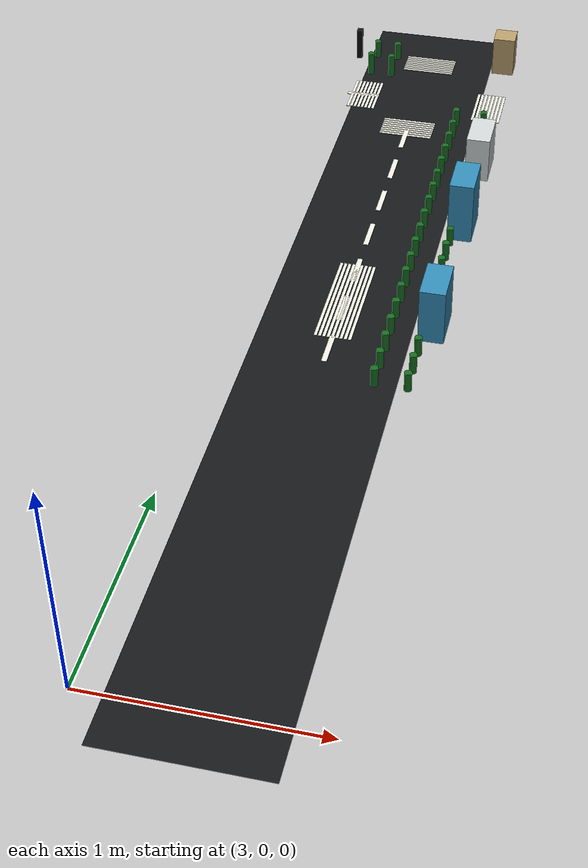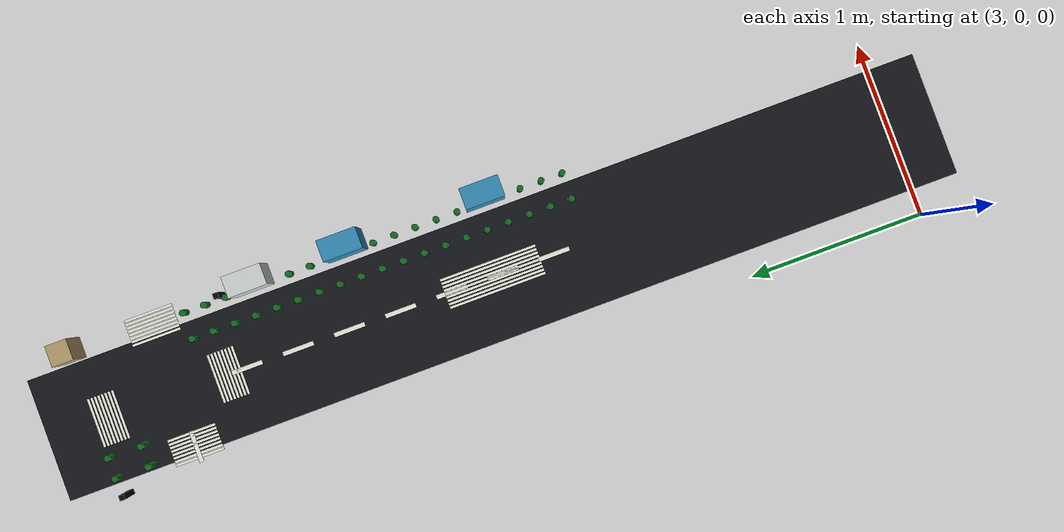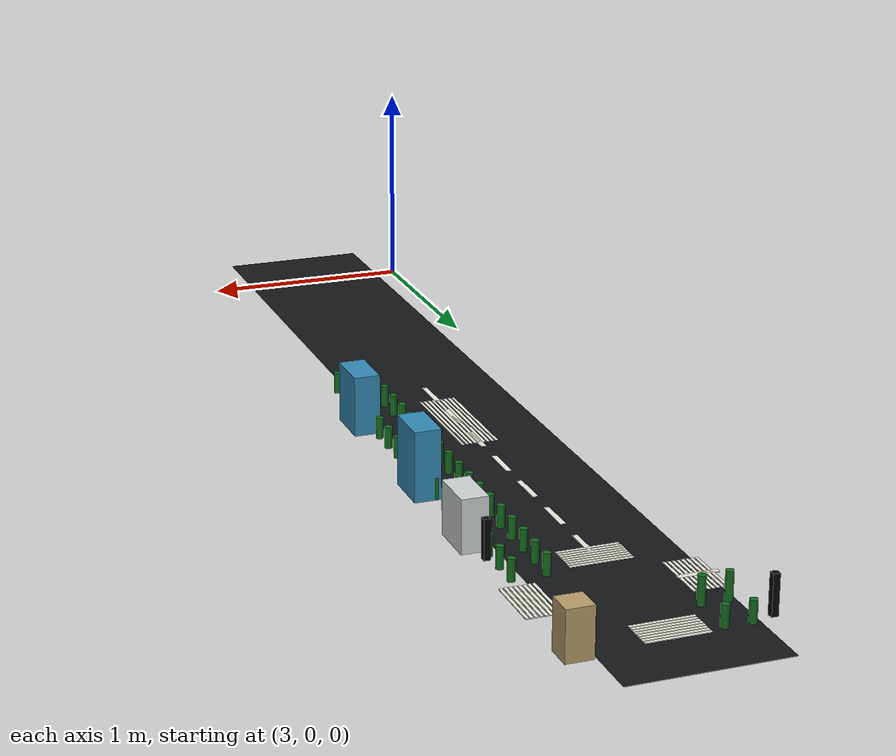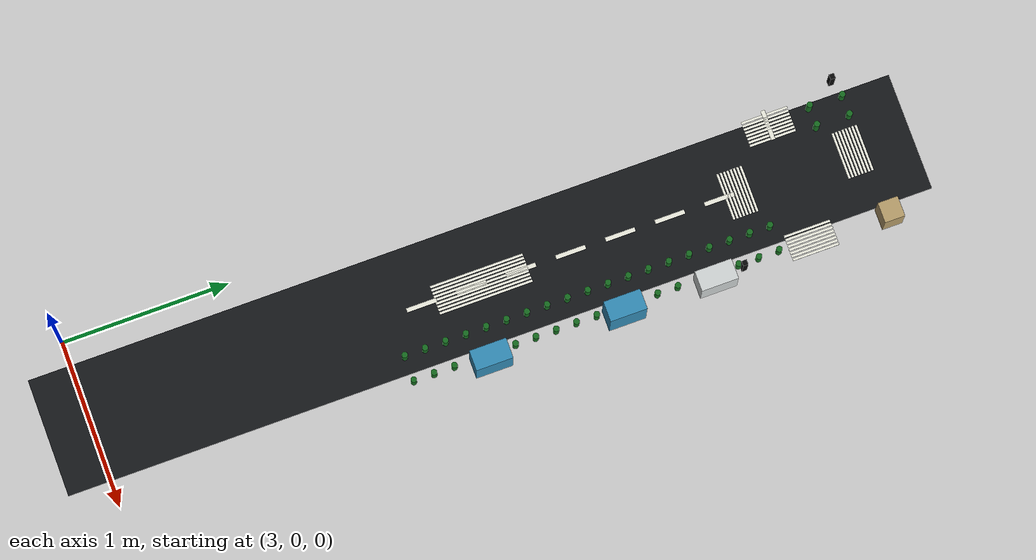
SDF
<sdf version="1.7">
 <world name="sandbox">
  <model name="RD-RING-E">
   <static>true</static>
   <pose>3.5 2.35 0.051000000000000004 0 0 0</pose>
   <link name="link">
    <collision name="collision">
     <geometry><box><size>0.7000000000000001 5.2 0.002</size></box></geometry>
    </collision>
    <visual name="visual">
     <geometry><box><size>0.7000000000000001 5.2 0.002</size></box></geometry>
     <material><ambient>0.08 0.09 0.1 1</ambient><diffuse>0.08 0.09 0.1 1</diffuse></material>
    </visual>
   </link>
  </model>
  <model name="LM-RING-E-05">
   <static>true</static>
   <pose>3.5 1.9900000000000002 0.05450000000000001 0 0 0</pose>
   <link name="link">
    <collision name="collision"><geometry><box><size>0.025 0.18 0.004</size></box></geometry></collision>
    <visual name="visual">
     <geometry><box><size>0.025 0.18 0.004</size></box></geometry>
     <material><ambient>0.93 0.93 0.88 1</ambient><diffuse>0.93 0.93 0.88 1</diffuse></material>
    </visual>
   </link>
  </model>
  <model name="LM-RING-E-06">
   <static>true</static>
   <pose>3.5 2.29 0.05450000000000001 0 0 0</pose>
   <link name="link">
    <collision name="collision"><geometry><box><size>0.025 0.18 0.004</size></box></geometry></collision>
    <visual name="visual">
     <geometry><box><size>0.025 0.18 0.004</size></box></geometry>
     <material><ambient>0.93 0.93 0.88 1</ambient><diffuse>0.93 0.93 0.88 1</diffuse></material>
    </visual>
   </link>
  </model>
  <model name="LM-RING-E-07">
   <static>true</static>
   <pose>3.5 2.59 0.05450000000000001 0 0 0</pose>
   <link name="link">
    <collision name="collision"><geometry><box><size>0.025 0.18 0.004</size></box></geometry></collision>
    <visual name="visual">
     <geometry><box><size>0.025 0.18 0.004</size></box></geometry>
     <material><ambient>0.93 0.93 0.88 1</ambient><diffuse>0.93 0.93 0.88 1</diffuse></material>
    </visual>
   </link>
  </model>
  <model name="LM-RING-E-08">
   <static>true</static>
   <pose>3.5 2.89 0.05450000000000001 0 0 0</pose>
   <link name="link">
    <collision name="collision"><geometry><box><size>0.025 0.18 0.004</size></box></geometry></collision>
    <visual name="visual">
     <geometry><box><size>0.025 0.18 0.004</size></box></geometry>
     <material><ambient>0.93 0.93 0.88 1</ambient><diffuse>0.93 0.93 0.88 1</diffuse></material>
    </visual>
   </link>
  </model>
  <model name="LM-RING-E-09">
   <static>true</static>
   <pose>3.5 3.19 0.05450000000000001 0 0 0</pose>
   <link name="link">
    <collision name="collision"><geometry><box><size>0.025 0.18 0.004</size></box></geometry></collision>
    <visual name="visual">
     <geometry><box><size>0.025 0.18 0.004</size></box></geometry>
     <material><ambient>0.93 0.93 0.88 1</ambient><diffuse>0.93 0.93 0.88 1</diffuse></material>
    </visual>
   </link>
  </model>
  <model name="LM-RING-E-10">
   <static>true</static>
   <pose>3.5 3.4899999999999998 0.05450000000000001 0 0 0</pose>
   <link name="link">
    <collision name="collision"><geometry><box><size>0.025 0.18 0.004</size></box></geometry></collision>
    <visual name="visual">
     <geometry><box><size>0.025 0.18 0.004</size></box></geometry>
     <material><ambient>0.93 0.93 0.88 1</ambient><diffuse>0.93 0.93 0.88 1</diffuse></material>
    </visual>
   </link>
  </model>
  <model name="LM-RING-E-11">
   <static>true</static>
   <pose>3.5 3.79 0.05450000000000001 0 0 0</pose>
   <link name="link">
    <collision name="collision"><geometry><box><size>0.025 0.18 0.004</size></box></geometry></collision>
    <visual name="visual">
     <geometry><box><size>0.025 0.18 0.004</size></box></geometry>
     <material><ambient>0.93 0.93 0.88 1</ambient><diffuse>0.93 0.93 0.88 1</diffuse></material>
    </visual>
   </link>
  </model>
  <model name="LM-RING-N-09">
   <static>true</static>
   <pose>3.19 4.2 0.05450000000000001 0 0 0</pose>
   <link name="link">
    <collision name="collision"><geometry><box><size>0.18 0.025 0.004</size></box></geometry></collision>
    <visual name="visual">
     <geometry><box><size>0.18 0.025 0.004</size></box></geometry>
     <material><ambient>0.93 0.93 0.88 1</ambient><diffuse>0.93 0.93 0.88 1</diffuse></material>
    </visual>
   </link>
  </model>
  <model name="CW-NE-X-01">
   <static>true</static>
   <pose>3.5 3.83 0.05450000000000001 0 0 0</pose>
   <link name="link">
    <collision name="collision"><geometry><box><size>0.28 0.014 0.004</size></box></geometry></collision>
    <visual name="visual">
     <geometry><box><size>0.28 0.014 0.004</size></box></geometry>
     <material><ambient>0.93 0.93 0.88 1</ambient><diffuse>0.93 0.93 0.88 1</diffuse></material>
    </visual>
   </link>
  </model>
  <model name="CW-NE-X-02">
   <static>true</static>
   <pose>3.5 3.85 0.05450000000000001 0 0 0</pose>
   <link name="link">
    <collision name="collision"><geometry><box><size>0.28 0.014 0.004</size></box></geometry></collision>
    <visual name="visual">
     <geometry><box><size>0.28 0.014 0.004</size></box></geometry>
     <material><ambient>0.93 0.93 0.88 1</ambient><diffuse>0.93 0.93 0.88 1</diffuse></material>
    </visual>
   </link>
  </model>
  <model name="CW-NE-X-03">
   <static>true</static>
   <pose>3.5 3.87 0.05450000000000001 0 0 0</pose>
   <link name="link">
    <collision name="collision"><geometry><box><size>0.28 0.014 0.004</size></box></geometry></collision>
    <visual name="visual">
     <geometry><box><size>0.28 0.014 0.004</size></box></geometry>
     <material><ambient>0.93 0.93 0.88 1</ambient><diffuse>0.93 0.93 0.88 1</diffuse></material>
    </visual>
   </link>
  </model>
  <model name="CW-NE-X-04">
   <static>true</static>
   <pose>3.5 3.89 0.05450000000000001 0 0 0</pose>
   <link name="link">
    <collision name="collision"><geometry><box><size>0.28 0.014 0.004</size></box></geometry></collision>
    <visual name="visual">
     <geometry><box><size>0.28 0.014 0.004</size></box></geometry>
     <material><ambient>0.93 0.93 0.88 1</ambient><diffuse>0.93 0.93 0.88 1</diffuse></material>
    </visual>
   </link>
  </model>
  <model name="CW-NE-X-05">
   <static>true</static>
   <pose>3.5 3.9099999999999997 0.05450000000000001 0 0 0</pose>
   <link name="link">
    <collision name="collision"><geometry><box><size>0.28 0.014 0.004</size></box></geometry></collision>
    <visual name="visual">
     <geometry><box><size>0.28 0.014 0.004</size></box></geometry>
     <material><ambient>0.93 0.93 0.88 1</ambient><diffuse>0.93 0.93 0.88 1</diffuse></material>
    </visual>
   </link>
  </model>
  <model name="CW-NE-X-06">
   <static>true</static>
   <pose>3.5 3.9299999999999997 0.05450000000000001 0 0 0</pose>
   <link name="link">
    <collision name="collision"><geometry><box><size>0.28 0.014 0.004</size></box></geometry></collision>
    <visual name="visual">
     <geometry><box><size>0.28 0.014 0.004</size></box></geometry>
     <material><ambient>0.93 0.93 0.88 1</ambient><diffuse>0.93 0.93 0.88 1</diffuse></material>
    </visual>
   </link>
  </model>
  <model name="CW-NE-X-07">
   <static>true</static>
   <pose>3.5 3.9499999999999997 0.05450000000000001 0 0 0</pose>
   <link name="link">
    <collision name="collision"><geometry><box><size>0.28 0.014 0.004</size></box></geometry></collision>
    <visual name="visual">
     <geometry><box><size>0.28 0.014 0.004</size></box></geometry>
     <material><ambient>0.93 0.93 0.88 1</ambient><diffuse>0.93 0.93 0.88 1</diffuse></material>
    </visual>
   </link>
  </model>
  <model name="CW-NE-X-08">
   <static>true</static>
   <pose>3.5 3.9699999999999998 0.05450000000000001 0 0 0</pose>
   <link name="link">
    <collision name="collision"><geometry><box><size>0.28 0.014 0.004</size></box></geometry></collision>
    <visual name="visual">
     <geometry><box><size>0.28 0.014 0.004</size></box></geometry>
     <material><ambient>0.93 0.93 0.88 1</ambient><diffuse>0.93 0.93 0.88 1</diffuse></material>
    </visual>
   </link>
  </model>
  <model name="CW-NE-Y-01">
   <static>true</static>
   <pose>3.1300000000000003 4.2 0.05450000000000001 0 0 0</pose>
   <link name="link">
    <collision name="collision"><geometry><box><size>0.014 0.28 0.004</size></box></geometry></collision>
    <visual name="visual">
     <geometry><box><size>0.014 0.28 0.004</size></box></geometry>
     <material><ambient>0.93 0.93 0.88 1</ambient><diffuse>0.93 0.93 0.88 1</diffuse></material>
    </visual>
   </link>
  </model>
  <model name="CW-NE-Y-02">
   <static>true</static>
   <pose>3.1500000000000004 4.2 0.05450000000000001 0 0 0</pose>
   <link name="link">
    <collision name="collision"><geometry><box><size>0.014 0.28 0.004</size></box></geometry></collision>
    <visual name="visual">
     <geometry><box><size>0.014 0.28 0.004</size></box></geometry>
     <material><ambient>0.93 0.93 0.88 1</ambient><diffuse>0.93 0.93 0.88 1</diffuse></material>
    </visual>
   </link>
  </model>
  <model name="CW-NE-Y-03">
   <static>true</static>
   <pose>3.1700000000000004 4.2 0.05450000000000001 0 0 0</pose>
   <link name="link">
    <collision name="collision"><geometry><box><size>0.014 0.28 0.004</size></box></geometry></collision>
    <visual name="visual">
     <geometry><box><size>0.014 0.28 0.004</size></box></geometry>
     <material><ambient>0.93 0.93 0.88 1</ambient><diffuse>0.93 0.93 0.88 1</diffuse></material>
    </visual>
   </link>
  </model>
  <model name="CW-NE-Y-04">
   <static>true</static>
   <pose>3.1900000000000004 4.2 0.05450000000000001 0 0 0</pose>
   <link name="link">
    <collision name="collision"><geometry><box><size>0.014 0.28 0.004</size></box></geometry></collision>
    <visual name="visual">
     <geometry><box><size>0.014 0.28 0.004</size></box></geometry>
     <material><ambient>0.93 0.93 0.88 1</ambient><diffuse>0.93 0.93 0.88 1</diffuse></material>
    </visual>
   </link>
  </model>
  <model name="CW-NE-Y-05">
   <static>true</static>
   <pose>3.21 4.2 0.05450000000000001 0 0 0</pose>
   <link name="link">
    <collision name="collision"><geometry><box><size>0.014 0.28 0.004</size></box></geometry></collision>
    <visual name="visual">
     <geometry><box><size>0.014 0.28 0.004</size></box></geometry>
     <material><ambient>0.93 0.93 0.88 1</ambient><diffuse>0.93 0.93 0.88 1</diffuse></material>
    </visual>
   </link>
  </model>
  <model name="CW-NE-Y-06">
   <static>true</static>
   <pose>3.23 4.2 0.05450000000000001 0 0 0</pose>
   <link name="link">
    <collision name="collision"><geometry><box><size>0.014 0.28 0.004</size></box></geometry></collision>
    <visual name="visual">
     <geometry><box><size>0.014 0.28 0.004</size></box></geometry>
     <material><ambient>0.93 0.93 0.88 1</ambient><diffuse>0.93 0.93 0.88 1</diffuse></material>
    </visual>
   </link>
  </model>
  <model name="CW-NE-Y-07">
   <static>true</static>
   <pose>3.25 4.2 0.05450000000000001 0 0 0</pose>
   <link name="link">
    <collision name="collision"><geometry><box><size>0.014 0.28 0.004</size></box></geometry></collision>
    <visual name="visual">
     <geometry><box><size>0.014 0.28 0.004</size></box></geometry>
     <material><ambient>0.93 0.93 0.88 1</ambient><diffuse>0.93 0.93 0.88 1</diffuse></material>
    </visual>
   </link>
  </model>
  <model name="CW-NE-Y-08">
   <static>true</static>
   <pose>3.27 4.2 0.05450000000000001 0 0 0</pose>
   <link name="link">
    <collision name="collision"><geometry><box><size>0.014 0.28 0.004</size></box></geometry></collision>
    <visual name="visual">
     <geometry><box><size>0.014 0.28 0.004</size></box></geometry>
     <material><ambient>0.93 0.93 0.88 1</ambient><diffuse>0.93 0.93 0.88 1</diffuse></material>
    </visual>
   </link>
  </model>
  <model name="CW-C-E-01">
   <static>true</static>
   <pose>3.42 2.35 0.05450000000000001 0 0 0</pose>
   <link name="link">
    <collision name="collision"><geometry><box><size>0.014 0.56 0.004</size></box></geometry></collision>
    <visual name="visual">
     <geometry><box><size>0.014 0.56 0.004</size></box></geometry>
     <material><ambient>0.93 0.93 0.88 1</ambient><diffuse>0.93 0.93 0.88 1</diffuse></material>
    </visual>
   </link>
  </model>
  <model name="CW-C-E-02">
   <static>true</static>
   <pose>3.44 2.35 0.05450000000000001 0 0 0</pose>
   <link name="link">
    <collision name="collision"><geometry><box><size>0.014 0.56 0.004</size></box></geometry></collision>
    <visual name="visual">
     <geometry><box><size>0.014 0.56 0.004</size></box></geometry>
     <material><ambient>0.93 0.93 0.88 1</ambient><diffuse>0.93 0.93 0.88 1</diffuse></material>
    </visual>
   </link>
  </model>
  <model name="CW-C-E-03">
   <static>true</static>
   <pose>3.46 2.35 0.05450000000000001 0 0 0</pose>
   <link name="link">
    <collision name="collision"><geometry><box><size>0.014 0.56 0.004</size></box></geometry></collision>
    <visual name="visual">
     <geometry><box><size>0.014 0.56 0.004</size></box></geometry>
     <material><ambient>0.93 0.93 0.88 1</ambient><diffuse>0.93 0.93 0.88 1</diffuse></material>
    </visual>
   </link>
  </model>
  <model name="CW-C-E-04">
   <static>true</static>
   <pose>3.48 2.35 0.05450000000000001 0 0 0</pose>
   <link name="link">
    <collision name="collision"><geometry><box><size>0.014 0.56 0.004</size></box></geometry></collision>
    <visual name="visual">
     <geometry><box><size>0.014 0.56 0.004</size></box></geometry>
     <material><ambient>0.93 0.93 0.88 1</ambient><diffuse>0.93 0.93 0.88 1</diffuse></material>
    </visual>
   </link>
  </model>
  <model name="CW-C-E-05">
   <static>true</static>
   <pose>3.5 2.35 0.05450000000000001 0 0 0</pose>
   <link name="link">
    <collision name="collision"><geometry><box><size>0.014 0.56 0.004</size></box></geometry></collision>
    <visual name="visual">
     <geometry><box><size>0.014 0.56 0.004</size></box></geometry>
     <material><ambient>0.93 0.93 0.88 1</ambient><diffuse>0.93 0.93 0.88 1</diffuse></material>
    </visual>
   </link>
  </model>
  <model name="CW-C-E-06">
   <static>true</static>
   <pose>3.52 2.35 0.05450000000000001 0 0 0</pose>
   <link name="link">
    <collision name="collision"><geometry><box><size>0.014 0.56 0.004</size></box></geometry></collision>
    <visual name="visual">
     <geometry><box><size>0.014 0.56 0.004</size></box></geometry>
     <material><ambient>0.93 0.93 0.88 1</ambient><diffuse>0.93 0.93 0.88 1</diffuse></material>
    </visual>
   </link>
  </model>
  <model name="CW-C-E-07">
   <static>true</static>
   <pose>3.54 2.35 0.05450000000000001 0 0 0</pose>
   <link name="link">
    <collision name="collision"><geometry><box><size>0.014 0.56 0.004</size></box></geometry></collision>
    <visual name="visual">
     <geometry><box><size>0.014 0.56 0.004</size></box></geometry>
     <material><ambient>0.93 0.93 0.88 1</ambient><diffuse>0.93 0.93 0.88 1</diffuse></material>
    </visual>
   </link>
  </model>
  <model name="CW-C-E-08">
   <static>true</static>
   <pose>3.56 2.35 0.05450000000000001 0 0 0</pose>
   <link name="link">
    <collision name="collision"><geometry><box><size>0.014 0.56 0.004</size></box></geometry></collision>
    <visual name="visual">
     <geometry><box><size>0.014 0.56 0.004</size></box></geometry>
     <material><ambient>0.93 0.93 0.88 1</ambient><diffuse>0.93 0.93 0.88 1</diffuse></material>
    </visual>
   </link>
  </model>
  <model name="CW-C-E-09">
   <static>true</static>
   <pose>3.58 2.35 0.05450000000000001 0 0 0</pose>
   <link name="link">
    <collision name="collision"><geometry><box><size>0.014 0.56 0.004</size></box></geometry></collision>
    <visual name="visual">
     <geometry><box><size>0.014 0.56 0.004</size></box></geometry>
     <material><ambient>0.93 0.93 0.88 1</ambient><diffuse>0.93 0.93 0.88 1</diffuse></material>
    </visual>
   </link>
  </model>
  <model name="CW-EXT-E-N-01">
   <static>true</static>
   <pose>3.5 4.53 0.05450000000000001 0 0 0</pose>
   <link name="link">
    <collision name="collision"><geometry><box><size>0.28 0.014 0.004</size></box></geometry></collision>
    <visual name="visual">
     <geometry><box><size>0.28 0.014 0.004</size></box></geometry>
     <material><ambient>0.93 0.93 0.88 1</ambient><diffuse>0.93 0.93 0.88 1</diffuse></material>
    </visual>
   </link>
  </model>
  <model name="CW-EXT-E-N-02">
   <static>true</static>
   <pose>3.5 4.550000000000001 0.05450000000000001 0 0 0</pose>
   <link name="link">
    <collision name="collision"><geometry><box><size>0.28 0.014 0.004</size></box></geometry></collision>
    <visual name="visual">
     <geometry><box><size>0.28 0.014 0.004</size></box></geometry>
     <material><ambient>0.93 0.93 0.88 1</ambient><diffuse>0.93 0.93 0.88 1</diffuse></material>
    </visual>
   </link>
  </model>
  <model name="CW-EXT-E-N-03">
   <static>true</static>
   <pose>3.5 4.57 0.05450000000000001 0 0 0</pose>
   <link name="link">
    <collision name="collision"><geometry><box><size>0.28 0.014 0.004</size></box></geometry></collision>
    <visual name="visual">
     <geometry><box><size>0.28 0.014 0.004</size></box></geometry>
     <material><ambient>0.93 0.93 0.88 1</ambient><diffuse>0.93 0.93 0.88 1</diffuse></material>
    </visual>
   </link>
  </model>
  <model name="CW-EXT-E-N-04">
   <static>true</static>
   <pose>3.5 4.590000000000001 0.05450000000000001 0 0 0</pose>
   <link name="link">
    <collision name="collision"><geometry><box><size>0.28 0.014 0.004</size></box></geometry></collision>
    <visual name="visual">
     <geometry><box><size>0.28 0.014 0.004</size></box></geometry>
     <material><ambient>0.93 0.93 0.88 1</ambient><diffuse>0.93 0.93 0.88 1</diffuse></material>
    </visual>
   </link>
  </model>
  <model name="CW-EXT-E-N-05">
   <static>true</static>
   <pose>3.5 4.61 0.05450000000000001 0 0 0</pose>
   <link name="link">
    <collision name="collision"><geometry><box><size>0.28 0.014 0.004</size></box></geometry></collision>
    <visual name="visual">
     <geometry><box><size>0.28 0.014 0.004</size></box></geometry>
     <material><ambient>0.93 0.93 0.88 1</ambient><diffuse>0.93 0.93 0.88 1</diffuse></material>
    </visual>
   </link>
  </model>
  <model name="CW-EXT-E-N-06">
   <static>true</static>
   <pose>3.5 4.630000000000001 0.05450000000000001 0 0 0</pose>
   <link name="link">
    <collision name="collision"><geometry><box><size>0.28 0.014 0.004</size></box></geometry></collision>
    <visual name="visual">
     <geometry><box><size>0.28 0.014 0.004</size></box></geometry>
     <material><ambient>0.93 0.93 0.88 1</ambient><diffuse>0.93 0.93 0.88 1</diffuse></material>
    </visual>
   </link>
  </model>
  <model name="CW-EXT-E-N-07">
   <static>true</static>
   <pose>3.5 4.65 0.05450000000000001 0 0 0</pose>
   <link name="link">
    <collision name="collision"><geometry><box><size>0.28 0.014 0.004</size></box></geometry></collision>
    <visual name="visual">
     <geometry><box><size>0.28 0.014 0.004</size></box></geometry>
     <material><ambient>0.93 0.93 0.88 1</ambient><diffuse>0.93 0.93 0.88 1</diffuse></material>
    </visual>
   </link>
  </model>
  <model name="CW-EXT-E-N-08">
   <static>true</static>
   <pose>3.5 4.670000000000001 0.05450000000000001 0 0 0</pose>
   <link name="link">
    <collision name="collision"><geometry><box><size>0.28 0.014 0.004</size></box></geometry></collision>
    <visual name="visual">
     <geometry><box><size>0.28 0.014 0.004</size></box></geometry>
     <material><ambient>0.93 0.93 0.88 1</ambient><diffuse>0.93 0.93 0.88 1</diffuse></material>
    </visual>
   </link>
  </model>
  <model name="CW-EXT-N-E-01">
   <static>true</static>
   <pose>3.83 4.2 0.05450000000000001 0 0 0</pose>
   <link name="link">
    <collision name="collision"><geometry><box><size>0.014 0.28 0.004</size></box></geometry></collision>
    <visual name="visual">
     <geometry><box><size>0.014 0.28 0.004</size></box></geometry>
     <material><ambient>0.93 0.93 0.88 1</ambient><diffuse>0.93 0.93 0.88 1</diffuse></material>
    </visual>
   </link>
  </model>
  <model name="CW-EXT-N-E-02">
   <static>true</static>
   <pose>3.85 4.2 0.05450000000000001 0 0 0</pose>
   <link name="link">
    <collision name="collision"><geometry><box><size>0.014 0.28 0.004</size></box></geometry></collision>
    <visual name="visual">
     <geometry><box><size>0.014 0.28 0.004</size></box></geometry>
     <material><ambient>0.93 0.93 0.88 1</ambient><diffuse>0.93 0.93 0.88 1</diffuse></material>
    </visual>
   </link>
  </model>
  <model name="CW-EXT-N-E-03">
   <static>true</static>
   <pose>3.87 4.2 0.05450000000000001 0 0 0</pose>
   <link name="link">
    <collision name="collision"><geometry><box><size>0.014 0.28 0.004</size></box></geometry></collision>
    <visual name="visual">
     <geometry><box><size>0.014 0.28 0.004</size></box></geometry>
     <material><ambient>0.93 0.93 0.88 1</ambient><diffuse>0.93 0.93 0.88 1</diffuse></material>
    </visual>
   </link>
  </model>
  <model name="CW-EXT-N-E-04">
   <static>true</static>
   <pose>3.89 4.2 0.05450000000000001 0 0 0</pose>
   <link name="link">
    <collision name="collision"><geometry><box><size>0.014 0.28 0.004</size></box></geometry></collision>
    <visual name="visual">
     <geometry><box><size>0.014 0.28 0.004</size></box></geometry>
     <material><ambient>0.93 0.93 0.88 1</ambient><diffuse>0.93 0.93 0.88 1</diffuse></material>
    </visual>
   </link>
  </model>
  <model name="CW-EXT-N-E-05">
   <static>true</static>
   <pose>3.9099999999999997 4.2 0.05450000000000001 0 0 0</pose>
   <link name="link">
    <collision name="collision"><geometry><box><size>0.014 0.28 0.004</size></box></geometry></collision>
    <visual name="visual">
     <geometry><box><size>0.014 0.28 0.004</size></box></geometry>
     <material><ambient>0.93 0.93 0.88 1</ambient><diffuse>0.93 0.93 0.88 1</diffuse></material>
    </visual>
   </link>
  </model>
  <model name="CW-EXT-N-E-06">
   <static>true</static>
   <pose>3.9299999999999997 4.2 0.05450000000000001 0 0 0</pose>
   <link name="link">
    <collision name="collision"><geometry><box><size>0.014 0.28 0.004</size></box></geometry></collision>
    <visual name="visual">
     <geometry><box><size>0.014 0.28 0.004</size></box></geometry>
     <material><ambient>0.93 0.93 0.88 1</ambient><diffuse>0.93 0.93 0.88 1</diffuse></material>
    </visual>
   </link>
  </model>
  <model name="CW-EXT-N-E-07">
   <static>true</static>
   <pose>3.9499999999999997 4.2 0.05450000000000001 0 0 0</pose>
   <link name="link">
    <collision name="collision"><geometry><box><size>0.014 0.28 0.004</size></box></geometry></collision>
    <visual name="visual">
     <geometry><box><size>0.014 0.28 0.004</size></box></geometry>
     <material><ambient>0.93 0.93 0.88 1</ambient><diffuse>0.93 0.93 0.88 1</diffuse></material>
    </visual>
   </link>
  </model>
  <model name="CW-EXT-N-E-08">
   <static>true</static>
   <pose>3.9699999999999998 4.2 0.05450000000000001 0 0 0</pose>
   <link name="link">
    <collision name="collision"><geometry><box><size>0.014 0.28 0.004</size></box></geometry></collision>
    <visual name="visual">
     <geometry><box><size>0.014 0.28 0.004</size></box></geometry>
     <material><ambient>0.93 0.93 0.88 1</ambient><diffuse>0.93 0.93 0.88 1</diffuse></material>
    </visual>
   </link>
  </model>
  <model name="BLD-F04">
   <static>true</static>
   <pose>3.92 4.66 0.16 0 0 0</pose>
   <link name="link">
    <collision name="collision"><geometry><box><size>0.12 0.12 0.22</size></box></geometry></collision>
    <visual name="visual">
     <geometry><box><size>0.12 0.12 0.22</size></box></geometry>
     <material><ambient>0.72 0.62 0.42 1</ambient><diffuse>0.72 0.62 0.42 1</diffuse></material>
    </visual>
   </link>
  </model>
  <model name="BLD-R02">
   <static>true</static>
   <pose>3.94 2.25 0.19 0 0 0</pose>
   <link name="link">
    <collision name="collision"><geometry><box><size>0.12 0.22 0.28</size></box></geometry></collision>
    <visual name="visual">
     <geometry><box><size>0.12 0.22 0.28</size></box></geometry>
     <material><ambient>0.2 0.55 0.72 1</ambient><diffuse>0.2 0.55 0.72 1</diffuse></material>
    </visual>
   </link>
  </model>
  <model name="BLD-R03">
   <static>true</static>
   <pose>3.94 3.0500000000000003 0.21000000000000002 0 0 0</pose>
   <link name="link">
    <collision name="collision"><geometry><box><size>0.12 0.22 0.32</size></box></geometry></collision>
    <visual name="visual">
     <geometry><box><size>0.12 0.22 0.32</size></box></geometry>
     <material><ambient>0.2 0.55 0.72 1</ambient><diffuse>0.2 0.55 0.72 1</diffuse></material>
    </visual>
   </link>
  </model>
  <model name="BLD-R04">
   <static>true</static>
   <pose>3.94 3.6 0.16999999999999998 0 0 0</pose>
   <link name="link">
    <collision name="collision"><geometry><box><size>0.12 0.22 0.24</size></box></geometry></collision>
    <visual name="visual">
     <geometry><box><size>0.12 0.22 0.24</size></box></geometry>
     <material><ambient>0.82 0.84 0.84 1</ambient><diffuse>0.82 0.84 0.84 1</diffuse></material>
    </visual>
   </link>
  </model>
  <model name="TR-R01-10">
   <static>true</static>
   <pose>3.9 1.7999999999999998 0.1 0 0 0</pose>
   <link name="link">
    <collision name="collision">
     <geometry><cylinder><radius>0.0175</radius><length>0.1</length></cylinder></geometry>
    </collision>
    <visual name="visual">
     <geometry><cylinder><radius>0.0175</radius><length>0.1</length></cylinder></geometry>
     <material><ambient>0.08 0.42 0.12 1</ambient><diffuse>0.08 0.42 0.12 1</diffuse></material>
    </visual>
   </link>
  </model>
  <model name="TR-R01-11">
   <static>true</static>
   <pose>3.9 1.922222222222222 0.1 0 0 0</pose>
   <link name="link">
    <collision name="collision">
     <geometry><cylinder><radius>0.0175</radius><length>0.1</length></cylinder></geometry>
    </collision>
    <visual name="visual">
     <geometry><cylinder><radius>0.0175</radius><length>0.1</length></cylinder></geometry>
     <material><ambient>0.08 0.42 0.12 1</ambient><diffuse>0.08 0.42 0.12 1</diffuse></material>
    </visual>
   </link>
  </model>
  <model name="TR-R01-12">
   <static>true</static>
   <pose>3.9 2.0444444444444443 0.1 0 0 0</pose>
   <link name="link">
    <collision name="collision">
     <geometry><cylinder><radius>0.0175</radius><length>0.1</length></cylinder></geometry>
    </collision>
    <visual name="visual">
     <geometry><cylinder><radius>0.0175</radius><length>0.1</length></cylinder></geometry>
     <material><ambient>0.08 0.42 0.12 1</ambient><diffuse>0.08 0.42 0.12 1</diffuse></material>
    </visual>
   </link>
  </model>
  <model name="TR-R01-13">
   <static>true</static>
   <pose>3.9 2.1666666666666665 0.1 0 0 0</pose>
   <link name="link">
    <collision name="collision">
     <geometry><cylinder><radius>0.0175</radius><length>0.1</length></cylinder></geometry>
    </collision>
    <visual name="visual">
     <geometry><cylinder><radius>0.0175</radius><length>0.1</length></cylinder></geometry>
     <material><ambient>0.08 0.42 0.12 1</ambient><diffuse>0.08 0.42 0.12 1</diffuse></material>
    </visual>
   </link>
  </model>
  <model name="TR-R01-14">
   <static>true</static>
   <pose>3.9 2.2888888888888888 0.1 0 0 0</pose>
   <link name="link">
    <collision name="collision">
     <geometry><cylinder><radius>0.0175</radius><length>0.1</length></cylinder></geometry>
    </collision>
    <visual name="visual">
     <geometry><cylinder><radius>0.0175</radius><length>0.1</length></cylinder></geometry>
     <material><ambient>0.08 0.42 0.12 1</ambient><diffuse>0.08 0.42 0.12 1</diffuse></material>
    </visual>
   </link>
  </model>
  <model name="TR-R01-15">
   <static>true</static>
   <pose>3.9 2.411111111111111 0.1 0 0 0</pose>
   <link name="link">
    <collision name="collision">
     <geometry><cylinder><radius>0.0175</radius><length>0.1</length></cylinder></geometry>
    </collision>
    <visual name="visual">
     <geometry><cylinder><radius>0.0175</radius><length>0.1</length></cylinder></geometry>
     <material><ambient>0.08 0.42 0.12 1</ambient><diffuse>0.08 0.42 0.12 1</diffuse></material>
    </visual>
   </link>
  </model>
  <model name="TR-R01-16">
   <static>true</static>
   <pose>3.9 2.533333333333333 0.1 0 0 0</pose>
   <link name="link">
    <collision name="collision">
     <geometry><cylinder><radius>0.0175</radius><length>0.1</length></cylinder></geometry>
    </collision>
    <visual name="visual">
     <geometry><cylinder><radius>0.0175</radius><length>0.1</length></cylinder></geometry>
     <material><ambient>0.08 0.42 0.12 1</ambient><diffuse>0.08 0.42 0.12 1</diffuse></material>
    </visual>
   </link>
  </model>
  <model name="TR-R01-17">
   <static>true</static>
   <pose>3.9 2.6555555555555554 0.1 0 0 0</pose>
   <link name="link">
    <collision name="collision">
     <geometry><cylinder><radius>0.0175</radius><length>0.1</length></cylinder></geometry>
    </collision>
    <visual name="visual">
     <geometry><cylinder><radius>0.0175</radius><length>0.1</length></cylinder></geometry>
     <material><ambient>0.08 0.42 0.12 1</ambient><diffuse>0.08 0.42 0.12 1</diffuse></material>
    </visual>
   </link>
  </model>
  <model name="TR-R01-18">
   <static>true</static>
   <pose>3.9 2.777777777777778 0.1 0 0 0</pose>
   <link name="link">
    <collision name="collision">
     <geometry><cylinder><radius>0.0175</radius><length>0.1</length></cylinder></geometry>
    </collision>
    <visual name="visual">
     <geometry><cylinder><radius>0.0175</radius><length>0.1</length></cylinder></geometry>
     <material><ambient>0.08 0.42 0.12 1</ambient><diffuse>0.08 0.42 0.12 1</diffuse></material>
    </visual>
   </link>
  </model>
  <model name="TR-R01-19">
   <static>true</static>
   <pose>3.9 2.9 0.1 0 0 0</pose>
   <link name="link">
    <collision name="collision">
     <geometry><cylinder><radius>0.0175</radius><length>0.1</length></cylinder></geometry>
    </collision>
    <visual name="visual">
     <geometry><cylinder><radius>0.0175</radius><length>0.1</length></cylinder></geometry>
     <material><ambient>0.08 0.42 0.12 1</ambient><diffuse>0.08 0.42 0.12 1</diffuse></material>
    </visual>
   </link>
  </model>
  <model name="TR-R01-20">
   <static>true</static>
   <pose>3.9 3.022222222222222 0.1 0 0 0</pose>
   <link name="link">
    <collision name="collision">
     <geometry><cylinder><radius>0.0175</radius><length>0.1</length></cylinder></geometry>
    </collision>
    <visual name="visual">
     <geometry><cylinder><radius>0.0175</radius><length>0.1</length></cylinder></geometry>
     <material><ambient>0.08 0.42 0.12 1</ambient><diffuse>0.08 0.42 0.12 1</diffuse></material>
    </visual>
   </link>
  </model>
  <model name="TR-R01-21">
   <static>true</static>
   <pose>3.9 3.1444444444444444 0.1 0 0 0</pose>
   <link name="link">
    <collision name="collision">
     <geometry><cylinder><radius>0.0175</radius><length>0.1</length></cylinder></geometry>
    </collision>
    <visual name="visual">
     <geometry><cylinder><radius>0.0175</radius><length>0.1</length></cylinder></geometry>
     <material><ambient>0.08 0.42 0.12 1</ambient><diffuse>0.08 0.42 0.12 1</diffuse></material>
    </visual>
   </link>
  </model>
  <model name="TR-R01-22">
   <static>true</static>
   <pose>3.9 3.2666666666666666 0.1 0 0 0</pose>
   <link name="link">
    <collision name="collision">
     <geometry><cylinder><radius>0.0175</radius><length>0.1</length></cylinder></geometry>
    </collision>
    <visual name="visual">
     <geometry><cylinder><radius>0.0175</radius><length>0.1</length></cylinder></geometry>
     <material><ambient>0.08 0.42 0.12 1</ambient><diffuse>0.08 0.42 0.12 1</diffuse></material>
    </visual>
   </link>
  </model>
  <model name="TR-R01-23">
   <static>true</static>
   <pose>3.9 3.388888888888889 0.1 0 0 0</pose>
   <link name="link">
    <collision name="collision">
     <geometry><cylinder><radius>0.0175</radius><length>0.1</length></cylinder></geometry>
    </collision>
    <visual name="visual">
     <geometry><cylinder><radius>0.0175</radius><length>0.1</length></cylinder></geometry>
     <material><ambient>0.08 0.42 0.12 1</ambient><diffuse>0.08 0.42 0.12 1</diffuse></material>
    </visual>
   </link>
  </model>
  <model name="TR-R01-24">
   <static>true</static>
   <pose>3.9 3.511111111111111 0.1 0 0 0</pose>
   <link name="link">
    <collision name="collision">
     <geometry><cylinder><radius>0.0175</radius><length>0.1</length></cylinder></geometry>
    </collision>
    <visual name="visual">
     <geometry><cylinder><radius>0.0175</radius><length>0.1</length></cylinder></geometry>
     <material><ambient>0.08 0.42 0.12 1</ambient><diffuse>0.08 0.42 0.12 1</diffuse></material>
    </visual>
   </link>
  </model>
  <model name="TR-R01-25">
   <static>true</static>
   <pose>3.9 3.6333333333333333 0.1 0 0 0</pose>
   <link name="link">
    <collision name="collision">
     <geometry><cylinder><radius>0.0175</radius><length>0.1</length></cylinder></geometry>
    </collision>
    <visual name="visual">
     <geometry><cylinder><radius>0.0175</radius><length>0.1</length></cylinder></geometry>
     <material><ambient>0.08 0.42 0.12 1</ambient><diffuse>0.08 0.42 0.12 1</diffuse></material>
    </visual>
   </link>
  </model>
  <model name="TR-R01-26">
   <static>true</static>
   <pose>3.9 3.7555555555555555 0.1 0 0 0</pose>
   <link name="link">
    <collision name="collision">
     <geometry><cylinder><radius>0.0175</radius><length>0.1</length></cylinder></geometry>
    </collision>
    <visual name="visual">
     <geometry><cylinder><radius>0.0175</radius><length>0.1</length></cylinder></geometry>
     <material><ambient>0.08 0.42 0.12 1</ambient><diffuse>0.08 0.42 0.12 1</diffuse></material>
    </visual>
   </link>
  </model>
  <model name="TR-R01-27">
   <static>true</static>
   <pose>3.9 3.8777777777777778 0.1 0 0 0</pose>
   <link name="link">
    <collision name="collision">
     <geometry><cylinder><radius>0.0175</radius><length>0.1</length></cylinder></geometry>
    </collision>
    <visual name="visual">
     <geometry><cylinder><radius>0.0175</radius><length>0.1</length></cylinder></geometry>
     <material><ambient>0.08 0.42 0.12 1</ambient><diffuse>0.08 0.42 0.12 1</diffuse></material>
    </visual>
   </link>
  </model>
  <model name="TR-R01-28">
   <static>true</static>
   <pose>3.9 4.0 0.1 0 0 0</pose>
   <link name="link">
    <collision name="collision">
     <geometry><cylinder><radius>0.0175</radius><length>0.1</length></cylinder></geometry>
    </collision>
    <visual name="visual">
     <geometry><cylinder><radius>0.0175</radius><length>0.1</length></cylinder></geometry>
     <material><ambient>0.08 0.42 0.12 1</ambient><diffuse>0.08 0.42 0.12 1</diffuse></material>
    </visual>
   </link>
  </model>
  <model name="TR-R02-10">
   <static>true</static>
   <pose>3.75 1.7999999999999998 0.1 0 0 0</pose>
   <link name="link">
    <collision name="collision">
     <geometry><cylinder><radius>0.0175</radius><length>0.1</length></cylinder></geometry>
    </collision>
    <visual name="visual">
     <geometry><cylinder><radius>0.0175</radius><length>0.1</length></cylinder></geometry>
     <material><ambient>0.08 0.42 0.12 1</ambient><diffuse>0.08 0.42 0.12 1</diffuse></material>
    </visual>
   </link>
  </model>
  <model name="TR-R02-11">
   <static>true</static>
   <pose>3.75 1.922222222222222 0.1 0 0 0</pose>
   <link name="link">
    <collision name="collision">
     <geometry><cylinder><radius>0.0175</radius><length>0.1</length></cylinder></geometry>
    </collision>
    <visual name="visual">
     <geometry><cylinder><radius>0.0175</radius><length>0.1</length></cylinder></geometry>
     <material><ambient>0.08 0.42 0.12 1</ambient><diffuse>0.08 0.42 0.12 1</diffuse></material>
    </visual>
   </link>
  </model>
  <model name="TR-R02-12">
   <static>true</static>
   <pose>3.75 2.0444444444444443 0.1 0 0 0</pose>
   <link name="link">
    <collision name="collision">
     <geometry><cylinder><radius>0.0175</radius><length>0.1</length></cylinder></geometry>
    </collision>
    <visual name="visual">
     <geometry><cylinder><radius>0.0175</radius><length>0.1</length></cylinder></geometry>
     <material><ambient>0.08 0.42 0.12 1</ambient><diffuse>0.08 0.42 0.12 1</diffuse></material>
    </visual>
   </link>
  </model>
  <model name="TR-R02-13">
   <static>true</static>
   <pose>3.75 2.1666666666666665 0.1 0 0 0</pose>
   <link name="link">
    <collision name="collision">
     <geometry><cylinder><radius>0.0175</radius><length>0.1</length></cylinder></geometry>
    </collision>
    <visual name="visual">
     <geometry><cylinder><radius>0.0175</radius><length>0.1</length></cylinder></geometry>
     <material><ambient>0.08 0.42 0.12 1</ambient><diffuse>0.08 0.42 0.12 1</diffuse></material>
    </visual>
   </link>
  </model>
  <model name="TR-R02-14">
   <static>true</static>
   <pose>3.75 2.2888888888888888 0.1 0 0 0</pose>
   <link name="link">
    <collision name="collision">
     <geometry><cylinder><radius>0.0175</radius><length>0.1</length></cylinder></geometry>
    </collision>
    <visual name="visual">
     <geometry><cylinder><radius>0.0175</radius><length>0.1</length></cylinder></geometry>
     <material><ambient>0.08 0.42 0.12 1</ambient><diffuse>0.08 0.42 0.12 1</diffuse></material>
    </visual>
   </link>
  </model>
  <model name="TR-R02-15">
   <static>true</static>
   <pose>3.75 2.411111111111111 0.1 0 0 0</pose>
   <link name="link">
    <collision name="collision">
     <geometry><cylinder><radius>0.0175</radius><length>0.1</length></cylinder></geometry>
    </collision>
    <visual name="visual">
     <geometry><cylinder><radius>0.0175</radius><length>0.1</length></cylinder></geometry>
     <material><ambient>0.08 0.42 0.12 1</ambient><diffuse>0.08 0.42 0.12 1</diffuse></material>
    </visual>
   </link>
  </model>
  <model name="TR-R02-16">
   <static>true</static>
   <pose>3.75 2.533333333333333 0.1 0 0 0</pose>
   <link name="link">
    <collision name="collision">
     <geometry><cylinder><radius>0.0175</radius><length>0.1</length></cylinder></geometry>
    </collision>
    <visual name="visual">
     <geometry><cylinder><radius>0.0175</radius><length>0.1</length></cylinder></geometry>
     <material><ambient>0.08 0.42 0.12 1</ambient><diffuse>0.08 0.42 0.12 1</diffuse></material>
    </visual>
   </link>
  </model>
  <model name="TR-R02-17">
   <static>true</static>
   <pose>3.75 2.6555555555555554 0.1 0 0 0</pose>
   <link name="link">
    <collision name="collision">
     <geometry><cylinder><radius>0.0175</radius><length>0.1</length></cylinder></geometry>
    </collision>
    <visual name="visual">
     <geometry><cylinder><radius>0.0175</radius><length>0.1</length></cylinder></geometry>
     <material><ambient>0.08 0.42 0.12 1</ambient><diffuse>0.08 0.42 0.12 1</diffuse></material>
    </visual>
   </link>
  </model>
  <model name="TR-R02-18">
   <static>true</static>
   <pose>3.75 2.777777777777778 0.1 0 0 0</pose>
   <link name="link">
    <collision name="collision">
     <geometry><cylinder><radius>0.0175</radius><length>0.1</length></cylinder></geometry>
    </collision>
    <visual name="visual">
     <geometry><cylinder><radius>0.0175</radius><length>0.1</length></cylinder></geometry>
     <material><ambient>0.08 0.42 0.12 1</ambient><diffuse>0.08 0.42 0.12 1</diffuse></material>
    </visual>
   </link>
  </model>
  <model name="TR-R02-19">
   <static>true</static>
   <pose>3.75 2.9 0.1 0 0 0</pose>
   <link name="link">
    <collision name="collision">
     <geometry><cylinder><radius>0.0175</radius><length>0.1</length></cylinder></geometry>
    </collision>
    <visual name="visual">
     <geometry><cylinder><radius>0.0175</radius><length>0.1</length></cylinder></geometry>
     <material><ambient>0.08 0.42 0.12 1</ambient><diffuse>0.08 0.42 0.12 1</diffuse></material>
    </visual>
   </link>
  </model>
  <model name="TR-R02-20">
   <static>true</static>
   <pose>3.75 3.022222222222222 0.1 0 0 0</pose>
   <link name="link">
    <collision name="collision">
     <geometry><cylinder><radius>0.0175</radius><length>0.1</length></cylinder></geometry>
    </collision>
    <visual name="visual">
     <geometry><cylinder><radius>0.0175</radius><length>0.1</length></cylinder></geometry>
     <material><ambient>0.08 0.42 0.12 1</ambient><diffuse>0.08 0.42 0.12 1</diffuse></material>
    </visual>
   </link>
  </model>
  <model name="TR-R02-21">
   <static>true</static>
   <pose>3.75 3.1444444444444444 0.1 0 0 0</pose>
   <link name="link">
    <collision name="collision">
     <geometry><cylinder><radius>0.0175</radius><length>0.1</length></cylinder></geometry>
    </collision>
    <visual name="visual">
     <geometry><cylinder><radius>0.0175</radius><length>0.1</length></cylinder></geometry>
     <material><ambient>0.08 0.42 0.12 1</ambient><diffuse>0.08 0.42 0.12 1</diffuse></material>
    </visual>
   </link>
  </model>
  <model name="TR-R02-22">
   <static>true</static>
   <pose>3.75 3.2666666666666666 0.1 0 0 0</pose>
   <link name="link">
    <collision name="collision">
     <geometry><cylinder><radius>0.0175</radius><length>0.1</length></cylinder></geometry>
    </collision>
    <visual name="visual">
     <geometry><cylinder><radius>0.0175</radius><length>0.1</length></cylinder></geometry>
     <material><ambient>0.08 0.42 0.12 1</ambient><diffuse>0.08 0.42 0.12 1</diffuse></material>
    </visual>
   </link>
  </model>
  <model name="TR-R02-23">
   <static>true</static>
   <pose>3.75 3.388888888888889 0.1 0 0 0</pose>
   <link name="link">
    <collision name="collision">
     <geometry><cylinder><radius>0.0175</radius><length>0.1</length></cylinder></geometry>
    </collision>
    <visual name="visual">
     <geometry><cylinder><radius>0.0175</radius><length>0.1</length></cylinder></geometry>
     <material><ambient>0.08 0.42 0.12 1</ambient><diffuse>0.08 0.42 0.12 1</diffuse></material>
    </visual>
   </link>
  </model>
  <model name="TR-R02-24">
   <static>true</static>
   <pose>3.75 3.511111111111111 0.1 0 0 0</pose>
   <link name="link">
    <collision name="collision">
     <geometry><cylinder><radius>0.0175</radius><length>0.1</length></cylinder></geometry>
    </collision>
    <visual name="visual">
     <geometry><cylinder><radius>0.0175</radius><length>0.1</length></cylinder></geometry>
     <material><ambient>0.08 0.42 0.12 1</ambient><diffuse>0.08 0.42 0.12 1</diffuse></material>
    </visual>
   </link>
  </model>
  <model name="TR-R02-25">
   <static>true</static>
   <pose>3.75 3.6333333333333333 0.1 0 0 0</pose>
   <link name="link">
    <collision name="collision">
     <geometry><cylinder><radius>0.0175</radius><length>0.1</length></cylinder></geometry>
    </collision>
    <visual name="visual">
     <geometry><cylinder><radius>0.0175</radius><length>0.1</length></cylinder></geometry>
     <material><ambient>0.08 0.42 0.12 1</ambient><diffuse>0.08 0.42 0.12 1</diffuse></material>
    </visual>
   </link>
  </model>
  <model name="TR-R02-26">
   <static>true</static>
   <pose>3.75 3.7555555555555555 0.1 0 0 0</pose>
   <link name="link">
    <collision name="collision">
     <geometry><cylinder><radius>0.0175</radius><length>0.1</length></cylinder></geometry>
    </collision>
    <visual name="visual">
     <geometry><cylinder><radius>0.0175</radius><length>0.1</length></cylinder></geometry>
     <material><ambient>0.08 0.42 0.12 1</ambient><diffuse>0.08 0.42 0.12 1</diffuse></material>
    </visual>
   </link>
  </model>
  <model name="TR-R02-27">
   <static>true</static>
   <pose>3.75 3.8777777777777778 0.1 0 0 0</pose>
   <link name="link">
    <collision name="collision">
     <geometry><cylinder><radius>0.0175</radius><length>0.1</length></cylinder></geometry>
    </collision>
    <visual name="visual">
     <geometry><cylinder><radius>0.0175</radius><length>0.1</length></cylinder></geometry>
     <material><ambient>0.08 0.42 0.12 1</ambient><diffuse>0.08 0.42 0.12 1</diffuse></material>
    </visual>
   </link>
  </model>
  <model name="TR-R02-28">
   <static>true</static>
   <pose>3.75 4.0 0.1 0 0 0</pose>
   <link name="link">
    <collision name="collision">
     <geometry><cylinder><radius>0.0175</radius><length>0.1</length></cylinder></geometry>
    </collision>
    <visual name="visual">
     <geometry><cylinder><radius>0.0175</radius><length>0.1</length></cylinder></geometry>
     <material><ambient>0.08 0.42 0.12 1</ambient><diffuse>0.08 0.42 0.12 1</diffuse></material>
    </visual>
   </link>
  </model>
  <model name="TR-B01-22">
   <static>true</static>
   <pose>3.181818181818182 4.65 0.1 0 0 0</pose>
   <link name="link">
    <collision name="collision">
     <geometry><cylinder><radius>0.0175</radius><length>0.1</length></cylinder></geometry>
    </collision>
    <visual name="visual">
     <geometry><cylinder><radius>0.0175</radius><length>0.1</length></cylinder></geometry>
     <material><ambient>0.08 0.42 0.12 1</ambient><diffuse>0.08 0.42 0.12 1</diffuse></material>
    </visual>
   </link>
  </model>
  <model name="TR-B01-23">
   <static>true</static>
   <pose>3.3000000000000003 4.65 0.1 0 0 0</pose>
   <link name="link">
    <collision name="collision">
     <geometry><cylinder><radius>0.0175</radius><length>0.1</length></cylinder></geometry>
    </collision>
    <visual name="visual">
     <geometry><cylinder><radius>0.0175</radius><length>0.1</length></cylinder></geometry>
     <material><ambient>0.08 0.42 0.12 1</ambient><diffuse>0.08 0.42 0.12 1</diffuse></material>
    </visual>
   </link>
  </model>
  <model name="TR-B02-22">
   <static>true</static>
   <pose>3.181818181818182 4.45 0.115 0 0 0</pose>
   <link name="link">
    <collision name="collision">
     <geometry><cylinder><radius>0.0175</radius><length>0.13</length></cylinder></geometry>
    </collision>
    <visual name="visual">
     <geometry><cylinder><radius>0.0175</radius><length>0.13</length></cylinder></geometry>
     <material><ambient>0.08 0.42 0.12 1</ambient><diffuse>0.08 0.42 0.12 1</diffuse></material>
    </visual>
   </link>
  </model>
  <model name="TR-B02-23">
   <static>true</static>
   <pose>3.3000000000000003 4.45 0.115 0 0 0</pose>
   <link name="link">
    <collision name="collision">
     <geometry><cylinder><radius>0.0175</radius><length>0.13</length></cylinder></geometry>
    </collision>
    <visual name="visual">
     <geometry><cylinder><radius>0.0175</radius><length>0.13</length></cylinder></geometry>
     <material><ambient>0.08 0.42 0.12 1</ambient><diffuse>0.08 0.42 0.12 1</diffuse></material>
    </visual>
   </link>
  </model>
  <model name="TL-NE-2">
   <static>true</static>
   <pose>3.92 3.7800000000000002 0.14 0 0 0</pose>
   <link name="link">
    <collision name="collision"><geometry><box><size>0.03 0.03 0.18</size></box></geometry></collision>
    <visual name="visual">
     <geometry><box><size>0.03 0.03 0.18</size></box></geometry>
     <material><ambient>0.03 0.03 0.03 1</ambient><diffuse>0.03 0.03 0.03 1</diffuse></material>
    </visual>
   </link>
  </model>
  <model name="TL-NE-3">
   <static>true</static>
   <pose>3.08 4.62 0.14 0 0 0</pose>
   <link name="link">
    <collision name="collision"><geometry><box><size>0.03 0.03 0.18</size></box></geometry></collision>
    <visual name="visual">
     <geometry><box><size>0.03 0.03 0.18</size></box></geometry>
     <material><ambient>0.03 0.03 0.03 1</ambient><diffuse>0.03 0.03 0.03 1</diffuse></material>
    </visual>
   </link>
  </model>
  <model name="TL-NE-4">
   <static>true</static>
   <pose>3.92 4.62 0.14 0 0 0</pose>
   <link name="link">
    <collision name="collision"><geometry><box><size>0.03 0.03 0.18</size></box></geometry></collision>
    <visual name="visual">
     <geometry><box><size>0.03 0.03 0.18</size></box></geometry>
     <material><ambient>0.03 0.03 0.03 1</ambient><diffuse>0.03 0.03 0.03 1</diffuse></material>
    </visual>
   </link>
  </model>
 </world>
</sdf>
